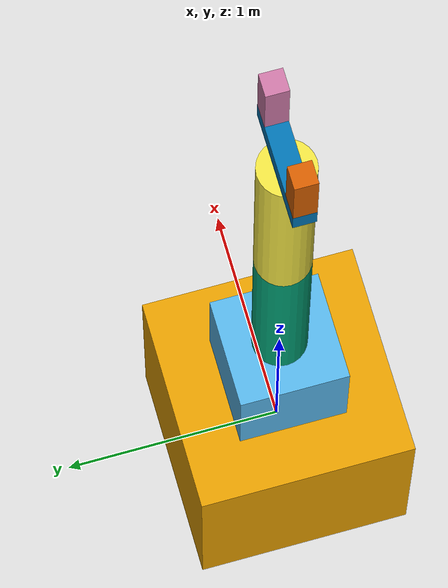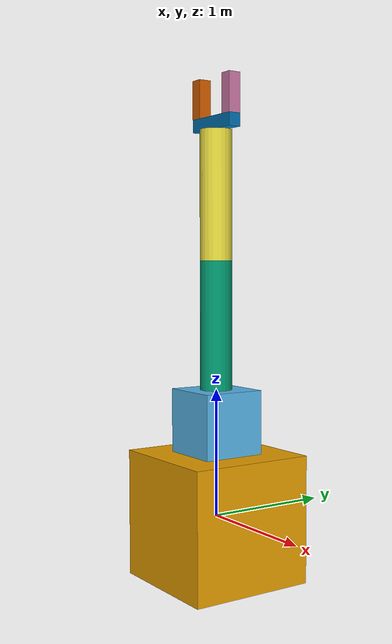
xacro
<?xml version="1.0"?>
<robot name="my_robot" xmlns:xacro="http://www.ros.org/wiki/xacro">

    <!-- Include xacro files -->
    <xacro:include filename="$(find my_robot_description)/urdf/links_joints.xacro"/>
    <xacro:include filename="$(find my_robot_description)/urdf/parameter.xacro"/>

    <!-- Define the robot -->
    <m_link_box name="${link00_name}" origin_xyz="0 0 0" origin_rpy="0 0 0"
                size="1 1 1" mass="10"
                ixx="1.67" ixy="0" ixz="0" iyy="1.67" iyz="0" izz="1.67"/>

    <m_joint name="m_joint" type="revolute" axis_xyz="0 0 1"
             origin_xyz="0 0 0.5" origin_rpy="0 0 0" lower="-1.57" upper="1.57"
             effort="100" velocity="0.3" parent="${link00_name}" child="${link01_name}"/>

    <m_link_box name="${link01_name}" origin_xyz="0 0 0.25" origin_rpy="0 0 0"
                size="0.5 0.5 0.5" mass="5"
                ixx="0.83" ixy="0" ixz="0" iyy="0.83" iyz="0" izz="0.83"/>

    <m_joint name="${link01_name}_to_${link02_name}" type="revolute" axis_xyz="0 1 0"
             origin_xyz="0 0 0.5" origin_rpy="0 0 0" lower="-1.57" upper="1.57"
             effort="100" velocity="0.3" parent="${link01_name}" child="${link02_name}"/>

    <m_link_cylinder name="${link02_name}" origin_xyz="0 0 0.5" origin_rpy="0 0 0"
                     radius="0.125" length="1" mass="5"
                     ixx="0.4362" ixy="0" ixz="0" iyy="0.4362" iyz="0" izz="0.039"/>

    <m_joint name="${link02_name}_to_${link03_name}" type="revolute" axis_xyz="0 1 0"
             origin_xyz="0 0 1" origin_rpy="0 0 0" lower="-1.57" upper="1.57"
             effort="100" velocity="0.3" parent="${link02_name}" child="${link03_name}"/>

    <m_link_cylinder name="${link03_name}" origin_xyz="0 0 0.5" origin_rpy="0 0 0"
                     radius="0.125" length="1" mass="5"
                     ixx="0.4362" ixy="0" ixz="0" iyy="0.4362" iyz="0" izz="0.039"/>

    <m_joint name="${link03_name}_to_${link04_name}" type="revolute" axis_xyz="0 0 1"
             origin_xyz="0 0 1" origin_rpy="0 0 0" lower="-1.57" upper="1.57"
             effort="100" velocity="0.3" parent="${link03_name}" child="${link04_name}"/>

    <m_link_box name="${link04_name}" origin_xyz="0 0 0.05" origin_rpy="0 0 0"
                size="0.5 0.1 0.1" mass="1"
                ixx="0.02167" ixy="0" ixz="0" iyy="0.02167" iyz="0" izz="0.00167"/>

    <m_joint name="${link04_name}_to_${link05_name}" type="prismatic" axis_xyz="1 0 0"
             origin_xyz="-0.25 0 0.1" origin_rpy="0 0 0" lower="0" upper="0.15"
             effort="100" velocity="0.3" parent="${link04_name}" child="${link05_name}"/>

    <m_link_box name="${link05_name}" origin_xyz="0.05 0 0.15" origin_rpy="0 0 0"
                size="0.1 0.1 0.3" mass="0.5"
                ixx="0.004167" ixy="0" ixz="0" iyy="0.00083" iyz="0" izz="0.004167"/>

    <m_joint name="${link04_name}_to_${link06_name}" type="prismatic" axis_xyz="1 0 0"
             origin_xyz="0.25 0 0.1" origin_rpy="0 0 0" lower="-0.15" upper="0"
             effort="100" velocity="0.3" parent="${link04_name}" child="${link06_name}"/>

    <m_link_box name="${link06_name}" origin_xyz="-0.05 0 0.15" origin_rpy="0 0 0"
                size="0.1 0.1 0.3" mass="0.5"
                ixx="0.004167" ixy="0" ixz="0" iyy="0.00083" iyz="0" izz="0.004167"/>

</robot>

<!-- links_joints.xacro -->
<robot xmlns:xacro="http://www.ros.org/wiki/xacro">

    <xacro:macro name="m_link_box" params="name origin_xyz origin_rpy size
                                           mass ixx ixy ixz iyy iyz izz">
    <link name="${name}">
        <inertial>
            <mass value="${mass}" />
            <origin rpy="${origin_rpy}" xyz="${origin_xyz}" />
            <inertia ixx="${ixx}" ixy="${ixy}" ixz="${ixz}" iyy="${iyy}" iyz="${iyz}" izz="${izz}" />
        </inertial>
        <collision>
            <origin rpy="${origin_rpy}" xyz="${origin_xyz}" />
            <geometry>
                <box size="${size}" />
            </geometry>
        </collision>
        <visual>
            <origin xyz="${origin_xyz}" rpy="${origin_rpy}"/>
            <geometry>
                <box size="${size}"/>
            </geometry>
        </visual>
    </link>
    </xacro:macro>

    <xacro:macro name="m_link_cylinder" params="name origin_xyz origin_rpy radius length
                                                mass ixx ixy ixz iyy iyz izz">
    <link name="${name}">
        <inertial>
            <mass value="${mass}" />
            <origin rpy="${origin_rpy}" xyz="${origin_xyz}" />
            <inertia ixx="${ixx}" ixy="${ixy}" ixz="${ixz}" iyy="${iyy}" iyz="${iyz}" izz="${izz}" />
        </inertial>
        <collision>
            <origin rpy="${origin_rpy}" xyz="${origin_xyz}" />
            <geometry>
                <cylinder radius="${radius}" length="${length}" />
            </geometry>
        </collision>
        <visual>
            <origin xyz="${origin_xyz}" rpy="${origin_rpy}"/>
            <geometry>
                <cylinder radius="${radius}" length="${length}"/>
            </geometry>
        </visual>
    </link>
    </xacro:macro>

    <xacro:macro name="m_joint" params="name type axis_xyz origin_xyz origin_rpy
                                        effort velocity upper lower parent child">
    <joint name="${name}" type="${type}">
        <axis xyz="${axis_xyz}"/>
        <limit effort="${effort}" upper="${upper}" lower="${lower}" velocity="${velocity}"/>
        <origin xyz="${origin_xyz}" rpy="${origin_rpy}"/>
        <parent link="${parent}"/>
        <child link="${child}"/>
    </joint>
    </xacro:macro>

    <xacro:macro name="m_link_mesh" params="name origin_xyz origin_rpy meshfile meshscale
                                           mass ixx ixy ixz iyy iyz izz">
    <link name="${name}">
        <inertial>
            <mass value="${mass}" />
            <origin rpy="${origin_rpy}" xyz="${origin_xyz}" />
            <inertia ixx="${ixx}" ixy="${ixy}" ixz="${ixz}" iyy="${iyy}" iyz="${iyz}" izz="${izz}" />
        </inertial>
        <collision>
            <origin rpy="${origin_rpy}" xyz="${origin_xyz}" />
            <geometry>
                <mesh filename="${meshfile}"
                      scale="${meshscale}"/>
            </geometry>
        </collision>
        <visual>
            <origin xyz="${origin_xyz}" rpy="${origin_rpy}"/>
            <geometry>
                <mesh filename="${meshfile}"
                      scale="${meshscale}"/>
            </geometry>
        </visual>
    </link>
    </xacro:macro>

</robot>

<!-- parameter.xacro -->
<robot xmlns:xacro="http://www.ros.org/wiki/xacro">
    <xacro:property name="link00_name" value="base_link"/>
    <xacro:property name="link01_name" value="link01"/>
    <xacro:property name="link02_name" value="link02"/>
    <xacro:property name="link03_name" value="link03"/>
    <xacro:property name="link04_name" value="wrist"/>
    <xacro:property name="link05_name" value="right_gripper"/>
    <xacro:property name="link06_name" value="left_gripper"/>
</robot>
